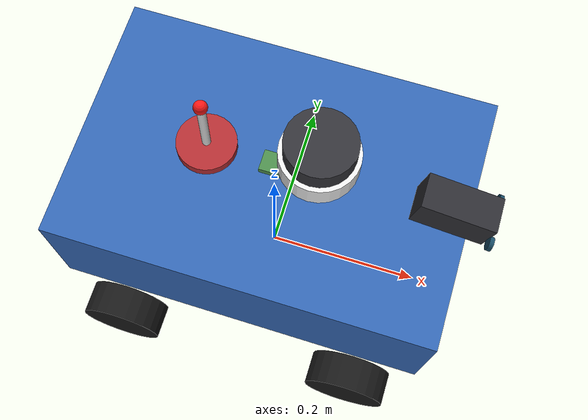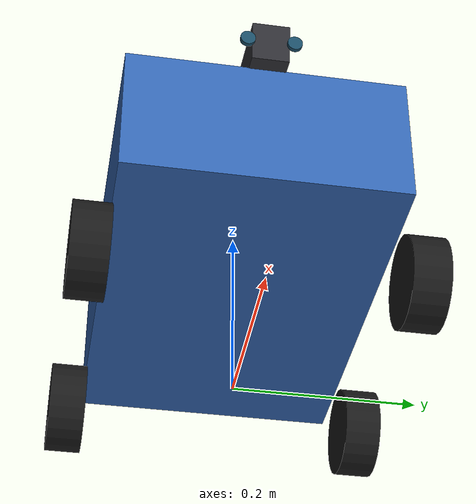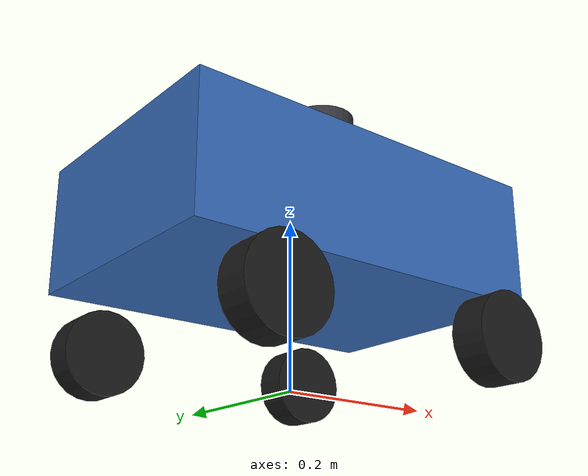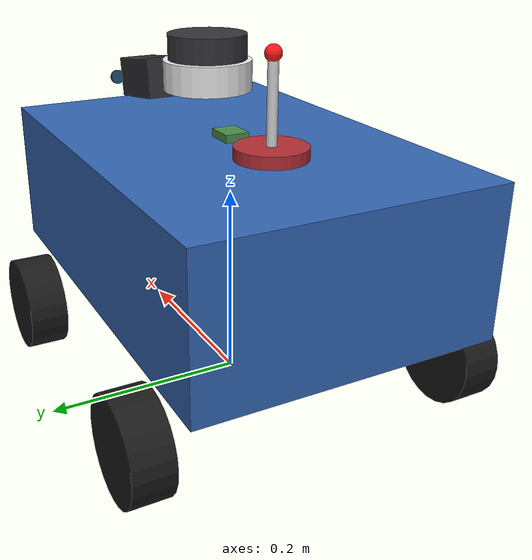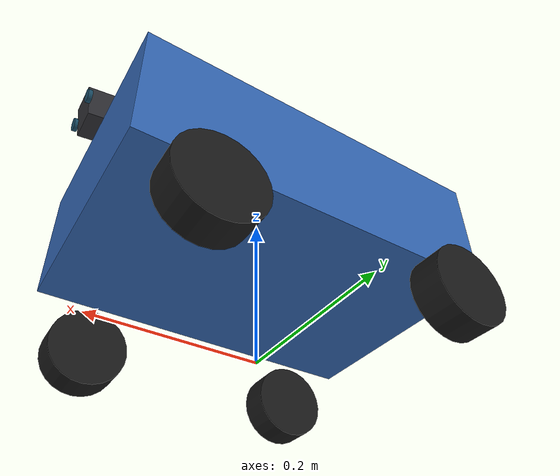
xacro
<?xml version="1.0"?>
<robot name="ika" xmlns:xacro="http://www.ros.org/wiki/xacro">

  <xacro:arg name="use_sim" default="false"/>
  <xacro:property name="use_sim" value="$(arg use_sim)"/>

  <xacro:include filename="$(find ika_description)/urdf/ika_properties.xacro"/>
  <xacro:include filename="$(find ika_description)/urdf/ika_base.xacro"/>
  <xacro:include filename="$(find ika_description)/urdf/ika_sensors.xacro"/>

  <xacro:if value="${use_sim}">
    <xacro:include filename="$(find ika_description)/urdf/ika_gazebo.xacro"/>
  </xacro:if>

</robot>

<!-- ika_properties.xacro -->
<robot xmlns:xacro="http://www.ros.org/wiki/xacro">

  <!-- Arac kinematik parametreleri - gercek arac olcumleriyle gunce-llenecek.
       Bu degerler config/robot_params.yaml ile uyumlu olmalidir. -->
  <xacro:property name="wheel_base"      value="0.30"/>
  <xacro:property name="wheel_radius"    value="0.05"/>
  <xacro:property name="wheel_width"     value="0.04"/>
  <xacro:property name="wheel_track"     value="0.30"/>   <!-- on-arka teker ekseni mesafesi -->
  <xacro:property name="robot_length"    value="0.45"/>
  <xacro:property name="robot_width"     value="0.30"/>
  <xacro:property name="robot_height"    value="0.15"/>
  <xacro:property name="base_mass"       value="3.0"/>
  <xacro:property name="wheel_mass"      value="0.15"/>

  <xacro:property name="chassis_top_z" value="${wheel_radius + 0.005 + robot_height}"/>

  <!-- Sensor montaj pozisyonlari (base_link merkezinden):
       lidar_z, camera_z vs hep govde ustu (chassis_top_z) + ufak ofset. -->
  <xacro:property name="lidar_x"   value="0.05"/>
  <xacro:property name="lidar_z"   value="${chassis_top_z + 0.080}"/>   <!-- 4cm yukseltildi: kamera/GPS plane disinda olsun -->
  <xacro:property name="camera_x"  value="${robot_length/2 - 0.02}"/>   <!-- on yuze yakin -->
  <xacro:property name="camera_z"  value="${chassis_top_z + 0.025}"/>
  <xacro:property name="camera_pitch" value="0.15"/>                    <!-- ~8.6 derece asagi -->
  <xacro:property name="imu_z"     value="${chassis_top_z + 0.005}"/>
  <xacro:property name="gps_z"     value="${chassis_top_z + 0.008}"/>

  <!-- =========  Renkler  =========
       Her sensor ayri renkte; tez gorseli icin belirgin. -->
  <material name="ika_body">
    <color rgba="0.20 0.40 0.70 1.0"/>      <!-- Mavi govde -->
  </material>
  <material name="ika_wheel">
    <color rgba="0.10 0.10 0.10 1.0"/>      <!-- Siyah lastik -->
  </material>
  <material name="ika_lidar_base">
    <color rgba="0.92 0.92 0.92 1.0"/>      <!-- RPLIDAR beyaz govde -->
  </material>
  <material name="ika_lidar_top">
    <color rgba="0.20 0.20 0.22 1.0"/>      <!-- Donen ust silindir koyu -->
  </material>
  <material name="ika_camera_body">
    <color rgba="0.18 0.18 0.20 1.0"/>      <!-- OAK-D dark grey -->
  </material>
  <material name="ika_lens">
    <color rgba="0.10 0.30 0.40 1.0"/>      <!-- Lens cam mavimsi -->
  </material>
  <material name="ika_imu">
    <color rgba="0.30 0.55 0.30 1.0"/>      <!-- IMU yesil PCB -->
  </material>
  <material name="ika_gps_body">
    <color rgba="0.70 0.18 0.20 1.0"/>      <!-- GPS govde kirmizi -->
  </material>
  <material name="ika_gps_antenna">
    <color rgba="0.85 0.85 0.85 1.0"/>      <!-- Anten direği gümüş -->
  </material>
  <material name="ika_led_red">
    <color rgba="1.0 0.10 0.10 1.0"/>       <!-- Kirmizi durum LED -->
  </material>
  <!-- Geri uyumluluk: eski isim referanslari icin -->
  <material name="ika_sensor">
    <color rgba="0.70 0.18 0.20 1.0"/>
  </material>
  <material name="ika_dark">
    <color rgba="0.18 0.18 0.20 1.0"/>
  </material>

  <!-- Yardimci makrolar -->
  <xacro:macro name="box_inertial" params="mass x y z">
    <inertial>
      <mass value="${mass}"/>
      <origin xyz="0 0 0"/>
      <inertia
        ixx="${mass*(y*y + z*z)/12.0}" ixy="0" ixz="0"
        iyy="${mass*(x*x + z*z)/12.0}" iyz="0"
        izz="${mass*(x*x + y*y)/12.0}"/>
    </inertial>
  </xacro:macro>

  <xacro:macro name="cylinder_inertial" params="mass r l">
    <inertial>
      <mass value="${mass}"/>
      <origin xyz="0 0 0"/>
      <inertia
        ixx="${mass*(3*r*r + l*l)/12.0}" ixy="0" ixz="0"
        iyy="${mass*(3*r*r + l*l)/12.0}" iyz="0"
        izz="${mass*r*r/2.0}"/>
    </inertial>
  </xacro:macro>

</robot>

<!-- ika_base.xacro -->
<robot xmlns:xacro="http://www.ros.org/wiki/xacro">

  <!-- base_footprint: yer duzleminde proje noktasi -->
  <link name="base_footprint"/>

  <joint name="base_footprint_joint" type="fixed">
    <parent link="base_footprint"/>
    <child link="base_link"/>
    <origin xyz="0 0 ${wheel_radius}" rpy="0 0 0"/>
  </joint>

  <xacro:property name="chassis_clearance" value="0.005"/>
  <xacro:property name="chassis_z" value="${wheel_radius + chassis_clearance + robot_height/2}"/>

  <link name="base_link">
    <visual>
      <origin xyz="0 0 ${chassis_z}"/>
      <geometry>
        <box size="${robot_length} ${robot_width} ${robot_height}"/>
      </geometry>
      <material name="ika_body"/>
    </visual>
    <collision>
      <origin xyz="0 0 ${chassis_z}"/>
      <geometry>
        <box size="${robot_length} ${robot_width} ${robot_height}"/>
      </geometry>
    </collision>
    <inertial>
      <mass value="${base_mass}"/>
      <origin xyz="0 0 ${chassis_z}"/>
      <inertia
        ixx="${base_mass*(robot_width*robot_width + robot_height*robot_height)/12.0}" ixy="0" ixz="0"
        iyy="${base_mass*(robot_length*robot_length + robot_height*robot_height)/12.0}" iyz="0"
        izz="${base_mass*(robot_length*robot_length + robot_width*robot_width)/12.0}"/>
    </inertial>
  </link>

  <!-- 4 teker makrosu -->
  <xacro:macro name="wheel" params="prefix x_offset y_offset">
    <link name="${prefix}_wheel">
      <visual>
        <origin rpy="${pi/2} 0 0"/>
        <geometry>
          <cylinder radius="${wheel_radius}" length="${wheel_width}"/>
        </geometry>
        <material name="ika_wheel"/>
      </visual>
      <collision>
        <origin rpy="${pi/2} 0 0"/>
        <geometry>
          <cylinder radius="${wheel_radius}" length="${wheel_width}"/>
        </geometry>
      </collision>
      <xacro:cylinder_inertial mass="${wheel_mass}" r="${wheel_radius}" l="${wheel_width}"/>
    </link>

    <joint name="${prefix}_wheel_joint" type="continuous">
      <parent link="base_link"/>
      <child link="${prefix}_wheel"/>
      <origin xyz="${x_offset} ${y_offset} 0" rpy="0 0 0"/>
      <axis xyz="0 1 0"/>
      <dynamics damping="0.1" friction="0.05"/>
    </joint>
  </xacro:macro>

  <!-- Skid-steer: 4 teker, sol/sag gruplar es-yonlu -->
  <xacro:wheel prefix="front_left"  x_offset="${ wheel_track/2}" y_offset="${ wheel_base/2 + wheel_width/2}"/>
  <xacro:wheel prefix="front_right" x_offset="${ wheel_track/2}" y_offset="${-wheel_base/2 - wheel_width/2}"/>
  <xacro:wheel prefix="back_left"   x_offset="${-wheel_track/2}" y_offset="${ wheel_base/2 + wheel_width/2}"/>
  <xacro:wheel prefix="back_right"  x_offset="${-wheel_track/2}" y_offset="${-wheel_base/2 - wheel_width/2}"/>

</robot>

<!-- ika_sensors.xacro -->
<robot xmlns:xacro="http://www.ros.org/wiki/xacro">

  <!-- ==========  RPLIDAR C1 (govde 60 mm + uzeri silindir)  ========== -->
  <!-- Gercek RPLIDAR C1: ~70 mm cap, beyaz govde, ust silindir donen
       lazer kapagi (biraz daha ust silindirle taklit). -->
  <link name="laser_base">
    <visual>
      <geometry>
        <cylinder radius="0.045" length="0.030"/>
      </geometry>
      <material name="ika_lidar_base"/>
    </visual>
    <collision>
      <geometry>
        <cylinder radius="0.045" length="0.030"/>
      </geometry>
    </collision>
    <xacro:cylinder_inertial mass="0.05" r="0.045" l="0.030"/>
  </link>
  <joint name="laser_base_joint" type="fixed">
    <parent link="base_link"/>
    <child link="laser_base"/>
    <origin xyz="${lidar_x} 0 ${lidar_z - 0.025}" rpy="0 0 0"/>
  </joint>

  <link name="laser_frame">
    <visual>
      <geometry>
        <cylinder radius="0.040" length="0.025"/>
      </geometry>
      <material name="ika_lidar_top"/>
    </visual>
    <xacro:cylinder_inertial mass="0.02" r="0.040" l="0.025"/>
  </link>
  <joint name="laser_joint" type="fixed">
    <parent link="laser_base"/>
    <child link="laser_frame"/>
    <origin xyz="0 0 0.028" rpy="0 0 0"/>
  </joint>

  <!-- ==========  RGB-D KAMERA (OAK-D Lite govdesi + lens izleri)  ========== -->
  <!-- Govde: yatay dikdortgen prizma, on yuze 2 lens noktasi (visual cue). -->
  <link name="camera_frame">
    <visual>
      <geometry>
        <box size="0.085 0.040 0.045"/>
      </geometry>
      <material name="ika_camera_body"/>
    </visual>
    <collision>
      <geometry>
        <box size="0.085 0.040 0.045"/>
      </geometry>
    </collision>
    <xacro:box_inertial mass="0.08" x="0.085" y="0.040" z="0.045"/>
  </link>
  <joint name="camera_joint" type="fixed">
    <parent link="base_link"/>
    <child link="camera_frame"/>
    <origin xyz="${camera_x} 0 ${camera_z}" rpy="0 ${camera_pitch} 0"/>
  </joint>

  <!-- Lens noktalari (sol stereo + sag RGB) -->
  <link name="camera_lens_left">
    <visual>
      <geometry><cylinder radius="0.008" length="0.005"/></geometry>
      <material name="ika_lens"/>
    </visual>
  </link>
  <joint name="camera_lens_left_joint" type="fixed">
    <parent link="camera_frame"/>
    <child link="camera_lens_left"/>
    <origin xyz="0.044 0.025 0" rpy="0 1.5708 0"/>
  </joint>
  <link name="camera_lens_right">
    <visual>
      <geometry><cylinder radius="0.008" length="0.005"/></geometry>
      <material name="ika_lens"/>
    </visual>
  </link>
  <joint name="camera_lens_right_joint" type="fixed">
    <parent link="camera_frame"/>
    <child link="camera_lens_right"/>
    <origin xyz="0.044 -0.025 0" rpy="0 1.5708 0"/>
  </joint>

  <!-- Derinlik optik cercevesi (ROS REP-103: x sag, y asagi, z ileri) -->
  <link name="camera_depth_optical_frame"/>
  <joint name="camera_depth_optical_joint" type="fixed">
    <parent link="camera_frame"/>
    <child link="camera_depth_optical_frame"/>
    <origin xyz="0 0 0" rpy="${-pi/2} 0 ${-pi/2}"/>
  </joint>

  <!-- ==========  IMU (BNO055 kart)  ========== -->
  <!-- Govde icine yakin, ust yuzeyde gorulebilen kucuk kart. -->
  <link name="imu_frame">
    <visual>
      <geometry>
        <box size="0.030 0.025 0.008"/>
      </geometry>
      <material name="ika_imu"/>
    </visual>
    <xacro:box_inertial mass="0.008" x="0.030" y="0.025" z="0.008"/>
  </link>
  <joint name="imu_joint" type="fixed">
    <parent link="base_link"/>
    <child link="imu_frame"/>
    <origin xyz="0 0 ${imu_z}" rpy="0 0 0"/>
  </joint>

  <!-- ==========  GPS (NEO-M8N benzeri kart + anten direği)  ========== -->
  <!-- Govde: yatay disk. Ust kismina aktif anten icin kucuk silindir +
       LED isaret (kirmizi nokta). Bu tezde "robotta GPS var" gorsel ipucu. -->
  <link name="gps_base">
    <visual>
      <geometry>
        <cylinder radius="0.035" length="0.012"/>
      </geometry>
      <material name="ika_gps_body"/>
    </visual>
    <xacro:cylinder_inertial mass="0.04" r="0.035" l="0.012"/>
  </link>
  <joint name="gps_base_joint" type="fixed">
    <parent link="base_link"/>
    <child link="gps_base"/>
    <origin xyz="-0.08 0 ${gps_z}" rpy="0 0 0"/>
  </joint>

  <!-- Anten direği -->
  <link name="gps_antenna">
    <visual>
      <geometry>
        <cylinder radius="0.005" length="0.080"/>
      </geometry>
      <material name="ika_gps_antenna"/>
    </visual>
  </link>
  <joint name="gps_antenna_joint" type="fixed">
    <parent link="gps_base"/>
    <child link="gps_antenna"/>
    <origin xyz="0 0 0.046" rpy="0 0 0"/>
  </joint>

  <!-- LED isaret (anten ucu) -->
  <link name="gps_led">
    <visual>
      <geometry>
        <sphere radius="0.008"/>
      </geometry>
      <material name="ika_led_red"/>
    </visual>
  </link>
  <joint name="gps_led_joint" type="fixed">
    <parent link="gps_antenna"/>
    <child link="gps_led"/>
    <origin xyz="0 0 0.042" rpy="0 0 0"/>
  </joint>

  <!-- gps_frame: navsat plugin'in referans aldigi cerceve.
       gps_base ile aynı pozda, ayrı isim. -->
  <link name="gps_frame"/>
  <joint name="gps_frame_joint" type="fixed">
    <parent link="gps_base"/>
    <child link="gps_frame"/>
    <origin xyz="0 0 0" rpy="0 0 0"/>
  </joint>

</robot>
